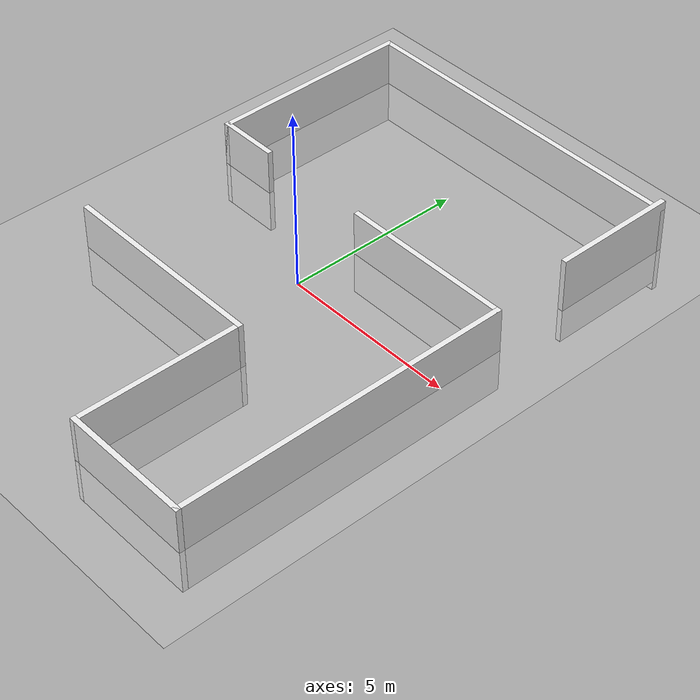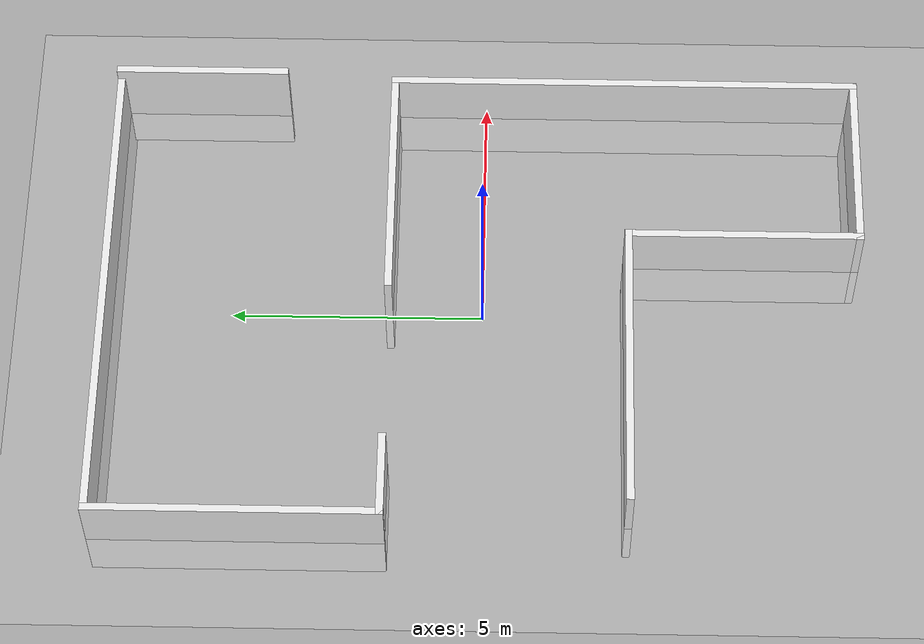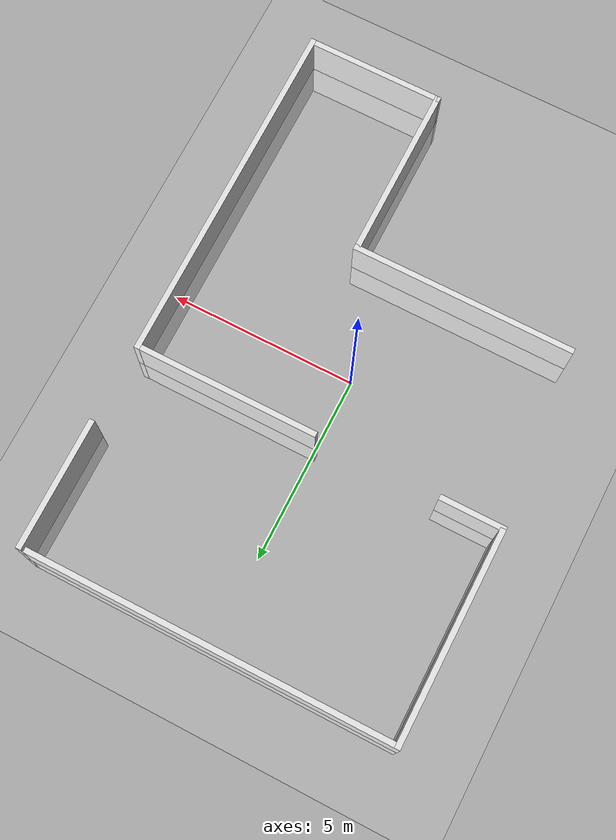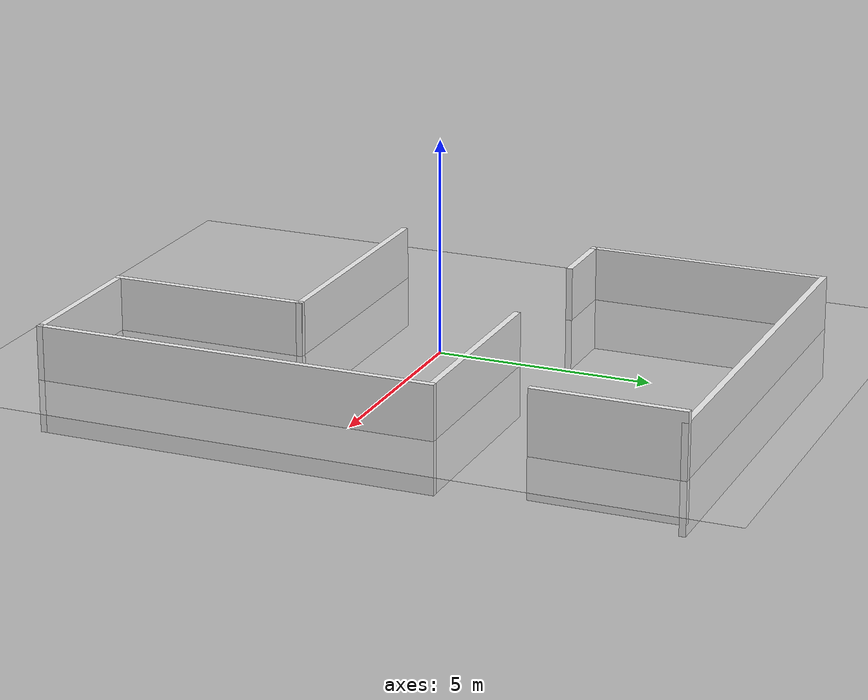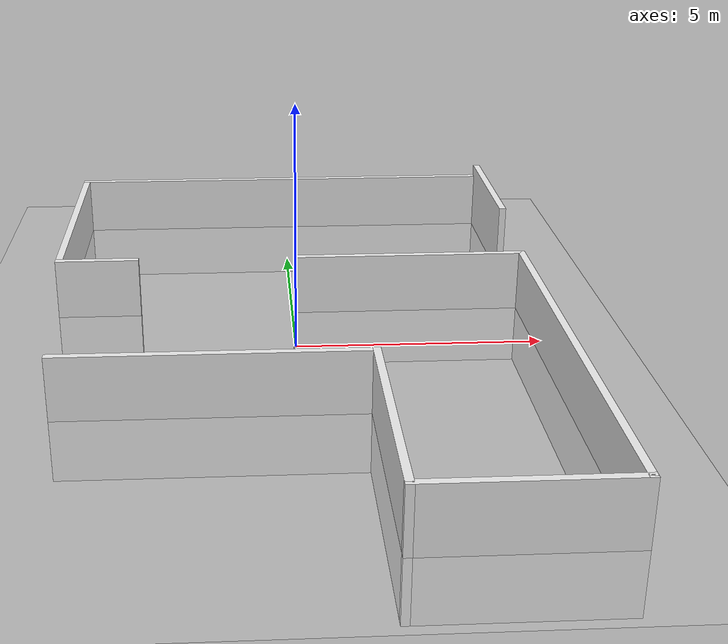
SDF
<sdf version='1.4'>
  <world name='default'>
    <!-- A global light source -->
    <include>
      <uri>model://sun</uri>
    </include>

    <!-- A ground plane -->
    <include>
      <uri>model://ground_plane</uri>
    </include>

    <physics type="ode">
      <real_time_update_rate>1000.0</real_time_update_rate>
      <max_step_size>0.001</max_step_size>
      <real_time_factor>1</real_time_factor>
      <ode>
        <solver>
          <type>quick</type>
          <iters>150</iters>
          <precon_iters>0</precon_iters>
          <sor>1.400000</sor>
          <use_dynamic_moi_rescaling>1</use_dynamic_moi_rescaling>
        </solver>
        <constraints>
          <cfm>0.00001</cfm>
          <erp>0.2</erp>
          <contact_max_correcting_vel>2000.000000</contact_max_correcting_vel>
          <contact_surface_layer>0.01000</contact_surface_layer>
        </constraints>
      </ode>
    </physics>

    <!-- Load world -->
    <include>
      <uri>model://maze</uri>
    </include>

    <scene>
      <ambient>0.4 0.4 0.4 1</ambient>
      <background>0.7 0.7 0.7 1</background>
      <shadows>true</shadows>
    </scene>

    <gui fullscreen='0'>
      <camera name='user_camera'>
        <pose>0.8 0.0 12.0 0 1.5708 0</pose>
        <view_controller>orbit</view_controller>
      </camera>
    </gui>
  </world>
</sdf>

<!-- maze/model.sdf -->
<sdf version='1.6'>
  <model name='ros_symbol_mosysmz'>
    <link name='symbol'>
      <self_collide>0</self_collide>
      <enable_wind>0</enable_wind>
      <kinematic>0</kinematic>
      <pose frame=''>0 0 0 0 -0 0</pose>
      <gravity>1</gravity>
      <inertial>
        <mass>1</mass>
        <pose frame=''>0 0 0 0 -0 0</pose>
        <inertia>
          <ixx>1</ixx>
          <ixy>0</ixy>
          <ixz>0</ixz>
          <iyy>1</iyy>
          <iyz>0</iyz>
          <izz>1</izz>
        </inertia>
      </inertial>
      <visual name='one_one'>
        <pose frame=''>0 7.475 0 0 -0 0</pose>
        <geometry>
          <box>
            <size>10 0.15 2.5</size>
          </box>
        </geometry>
        <material>
          <script>
            <uri>file://media/materials/scripts/gazebo.material</uri>
            <name>Gazebo/White</name>
          </script>
          <shader type='vertex'>
            <normal_map>__default__</normal_map>
          </shader>
          <ambient>1 1 1 1</ambient>
          <diffuse>1 1 1 1</diffuse>
          <specular>0 0 0 1</specular>
          <emissive>0 0 0 1</emissive>
        </material>
        <transparency>0</transparency>
        <cast_shadows>1</cast_shadows>
      </visual>
      <visual name='one_two'>
        <pose frame=''>-4.92506 4.675 0 0 0 -1.5708</pose>
        <geometry>
          <box>
            <size>5.75 0.15 2.5</size>
          </box>
        </geometry>
        <material>
          <script>
            <uri>file://media/materials/scripts/gazebo.material</uri>
            <name>Gazebo/White</name>
          </script>
          <shader type='vertex'>
            <normal_map>__default__</normal_map>
          </shader>
          <ambient>1 1 1 1</ambient>
          <diffuse>1 1 1 1</diffuse>
          <specular>0 0 0 1</specular>
          <emissive>0 0 0 1</emissive>
        </material>
        <transparency>0</transparency>
        <cast_shadows>1</cast_shadows>
      </visual>
      <visual name='two_one'>
        <pose frame=''>1.32494 -5.175 0 0 -0 1.5708</pose>
        <geometry>
          <box>
            <size>4.75 0.15 2.5</size>
          </box>
        </geometry>
        <material>
          <script>
            <uri>file://media/materials/scripts/gazebo.material</uri>
            <name>Gazebo/White</name>
          </script>
          <shader type='vertex'>
            <normal_map>__default__</normal_map>
          </shader>
          <ambient>1 1 1 1</ambient>
          <diffuse>1 1 1 1</diffuse>
          <specular>0 0 0 1</specular>
          <emissive>0 0 0 1</emissive>
        </material>
        <transparency>0</transparency>
        <cast_shadows>1</cast_shadows>
      </visual>
      <visual name='one_three'>
        <pose frame=''>3.12494 -7.475 0 0 -0 3.14159</pose>
        <geometry>
          <box>
            <size>3.75 0.15 2.5</size>
          </box>
        </geometry>
        <material>
          <script>
            <uri>file://media/materials/scripts/gazebo.material</uri>
            <name>Gazebo/White</name>
          </script>
          <shader type='vertex'>
            <normal_map>__default__</normal_map>
          </shader>
          <ambient>1 1 1 1</ambient>
          <diffuse>1 1 1 1</diffuse>
          <specular>0 0 0 1</specular>
          <emissive>0 0 0 1</emissive>
        </material>
        <transparency>0</transparency>
        <cast_shadows>1</cast_shadows>
      </visual>
      <visual name='two_two'>
        <pose frame=''>-1.6 -2.875 0 0 -0 0</pose>
        <geometry>
          <box>
            <size>6 0.15 2.5</size>
          </box>
        </geometry>
        <material>
          <script>
            <uri>file://media/materials/scripts/gazebo.material</uri>
            <name>Gazebo/White</name>
          </script>
          <shader type='vertex'>
            <normal_map>__default__</normal_map>
          </shader>
          <ambient>1 1 1 1</ambient>
          <diffuse>1 1 1 1</diffuse>
          <specular>0 0 0 1</specular>
          <emissive>0 0 0 1</emissive>
        </material>
        <transparency>0</transparency>
        <cast_shadows>1</cast_shadows>
      </visual>
      <visual name='two_three'>
        <pose frame=''>-4.12506 1.875 0 0 -0 0</pose>
        <geometry>
          <box>
            <size>1.75 0.15 2.5</size>
          </box>
        </geometry>
        <material>
          <script>
            <uri>file://media/materials/scripts/gazebo.material</uri>
            <name>Gazebo/White</name>
          </script>
          <shader type='vertex'>
            <normal_map>__default__</normal_map>
          </shader>
          <ambient>1 1 1 1</ambient>
          <diffuse>1 1 1 1</diffuse>
          <specular>0 0 0 1</specular>
          <emissive>0 0 0 1</emissive>
        </material>
        <transparency>0</transparency>
        <cast_shadows>1</cast_shadows>
      </visual>
      <visual name='three_one'>
        <pose frame=''>4.92494 5.8 0.25 0 0 -1.5708</pose>
        <geometry>
          <box>
            <size>3.5 0.15 2.5</size>
          </box>
        </geometry>
        <material>
          <script>
            <uri>file://media/materials/scripts/gazebo.material</uri>
            <name>Gazebo/White</name>
          </script>
          <shader type='vertex'>
            <normal_map>__default__</normal_map>
          </shader>
          <ambient>1 1 1 1</ambient>
          <diffuse>1 1 1 1</diffuse>
          <specular>0 0 0 1</specular>
          <emissive>0 0 0 1</emissive>
        </material>
        <transparency>0</transparency>
        <cast_shadows>1</cast_shadows>
      </visual>
      <visual name='three_two'>
        <pose frame=''>2.51367 1.87139 0 0 -0 0</pose>
        <geometry>
          <box>
            <size>4.97255 0.15 2.5</size>
          </box>
        </geometry>
        <material>
          <script>
            <uri>file://media/materials/scripts/gazebo.material</uri>
            <name>Gazebo/White</name>
          </script>
          <shader type='vertex'>
            <normal_map>__default__</normal_map>
          </shader>
          <ambient>1 1 1 1</ambient>
          <diffuse>1 1 1 1</diffuse>
          <specular>0 0 0 1</specular>
          <emissive>0 0 0 1</emissive>
        </material>
        <transparency>0</transparency>
        <cast_shadows>1</cast_shadows>
      </visual>
      <visual name='three_three'>
        <pose frame=''>4.92494 -2.8 0 0 0 -1.5708</pose>
        <geometry>
          <box>
            <size>9.5 0.15 2.5</size>
          </box>
        </geometry>
        <material>
          <script>
            <uri>file://media/materials/scripts/gazebo.material</uri>
            <name>Gazebo/White</name>
          </script>
          <shader type='vertex'>
            <normal_map>__default__</normal_map>
          </shader>
          <ambient>1 1 1 1</ambient>
          <diffuse>1 1 1 1</diffuse>
          <specular>0 0 0 1</specular>
          <emissive>0 0 0 1</emissive>
        </material>
        <transparency>0</transparency>
        <cast_shadows>1</cast_shadows>
      </visual>
      <collision name='one_one'>
        <laser_retro>0</laser_retro>
        <max_contacts>10</max_contacts>
        <pose frame=''>0 7.475 1.25 0 -0 0</pose>
        <geometry>
          <box>
            <size>10 0.15 2.5</size>
          </box>
        </geometry>
        <surface>
          <friction>
            <ode>
              <mu>1</mu>
              <mu2>1</mu2>
              <fdir1>0 0 0</fdir1>
              <slip1>0</slip1>
              <slip2>0</slip2>
            </ode>
            <torsional>
              <coefficient>1</coefficient>
              <patch_radius>0</patch_radius>
              <surface_radius>0</surface_radius>
              <use_patch_radius>1</use_patch_radius>
              <ode>
                <slip>0</slip>
              </ode>
            </torsional>
          </friction>
          <bounce>
            <restitution_coefficient>0</restitution_coefficient>
            <threshold>1e+06</threshold>
          </bounce>
          <contact>
            <collide_without_contact>0</collide_without_contact>
            <collide_without_contact_bitmask>1</collide_without_contact_bitmask>
            <collide_bitmask>1</collide_bitmask>
            <ode>
              <soft_cfm>0</soft_cfm>
              <soft_erp>0.2</soft_erp>
              <kp>1e+13</kp>
              <kd>1</kd>
              <max_vel>0.01</max_vel>
              <min_depth>0</min_depth>
            </ode>
            <bullet>
              <split_impulse>1</split_impulse>
              <split_impulse_penetration_threshold>-0.01</split_impulse_penetration_threshold>
              <soft_cfm>0</soft_cfm>
              <soft_erp>0.2</soft_erp>
              <kp>1e+13</kp>
              <kd>1</kd>
            </bullet>
          </contact>
        </surface>
      </collision>
      <collision name='one_two'>
        <laser_retro>0</laser_retro>
        <max_contacts>10</max_contacts>
        <pose frame=''>-4.92506 4.675 0 0 0 -1.5708</pose>
        <geometry>
          <box>
            <size>5.75 0.15 2.5</size>
          </box>
        </geometry>
        <surface>
          <friction>
            <ode>
              <mu>1</mu>
              <mu2>1</mu2>
              <fdir1>0 0 0</fdir1>
              <slip1>0</slip1>
              <slip2>0</slip2>
            </ode>
            <torsional>
              <coefficient>1</coefficient>
              <patch_radius>0</patch_radius>
              <surface_radius>0</surface_radius>
              <use_patch_radius>1</use_patch_radius>
              <ode>
                <slip>0</slip>
              </ode>
            </torsional>
          </friction>
          <bounce>
            <restitution_coefficient>0</restitution_coefficient>
            <threshold>1e+06</threshold>
          </bounce>
          <contact>
            <collide_without_contact>0</collide_without_contact>
            <collide_without_contact_bitmask>1</collide_without_contact_bitmask>
            <collide_bitmask>1</collide_bitmask>
            <ode>
              <soft_cfm>0</soft_cfm>
              <soft_erp>0.2</soft_erp>
              <kp>1e+13</kp>
              <kd>1</kd>
              <max_vel>0.01</max_vel>
              <min_depth>0</min_depth>
            </ode>
            <bullet>
              <split_impulse>1</split_impulse>
              <split_impulse_penetration_threshold>-0.01</split_impulse_penetration_threshold>
              <soft_cfm>0</soft_cfm>
              <soft_erp>0.2</soft_erp>
              <kp>1e+13</kp>
              <kd>1</kd>
            </bullet>
          </contact>
        </surface>
      </collision>
      <collision name='two_two'>
        <laser_retro>0</laser_retro>
        <max_contacts>10</max_contacts>
        <pose frame=''>-1.6 -2.875 0 0 -0 3.14159</pose>
        <geometry>
          <box>
            <size>6 0.15 2.5</size>
          </box>
        </geometry>
        <surface>
          <friction>
            <ode>
              <mu>1</mu>
              <mu2>1</mu2>
              <fdir1>0 0 0</fdir1>
              <slip1>0</slip1>
              <slip2>0</slip2>
            </ode>
            <torsional>
              <coefficient>1</coefficient>
              <patch_radius>0</patch_radius>
              <surface_radius>0</surface_radius>
              <use_patch_radius>1</use_patch_radius>
              <ode>
                <slip>0</slip>
              </ode>
            </torsional>
          </friction>
          <bounce>
            <restitution_coefficient>0</restitution_coefficient>
            <threshold>1e+06</threshold>
          </bounce>
          <contact>
            <collide_without_contact>0</collide_without_contact>
            <collide_without_contact_bitmask>1</collide_without_contact_bitmask>
            <collide_bitmask>1</collide_bitmask>
            <ode>
              <soft_cfm>0</soft_cfm>
              <soft_erp>0.2</soft_erp>
              <kp>1e+13</kp>
              <kd>1</kd>
              <max_vel>0.01</max_vel>
              <min_depth>0</min_depth>
            </ode>
            <bullet>
              <split_impulse>1</split_impulse>
              <split_impulse_penetration_threshold>-0.01</split_impulse_penetration_threshold>
              <soft_cfm>0</soft_cfm>
              <soft_erp>0.2</soft_erp>
              <kp>1e+13</kp>
              <kd>1</kd>
            </bullet>
          </contact>
        </surface>
      </collision>
      <collision name='two_one'>
        <laser_retro>0</laser_retro>
        <max_contacts>10</max_contacts>
        <pose frame=''>1.32494 -5.175 0 0 -0 1.5708</pose>
        <geometry>
          <box>
            <size>4.75 0.15 2.5</size>
          </box>
        </geometry>
        <surface>
          <friction>
            <ode>
              <mu>1</mu>
              <mu2>1</mu2>
              <fdir1>0 0 0</fdir1>
              <slip1>0</slip1>
              <slip2>0</slip2>
            </ode>
            <torsional>
              <coefficient>1</coefficient>
              <patch_radius>0</patch_radius>
              <surface_radius>0</surface_radius>
              <use_patch_radius>1</use_patch_radius>
              <ode>
                <slip>0</slip>
              </ode>
            </torsional>
          </friction>
          <bounce>
            <restitution_coefficient>0</restitution_coefficient>
            <threshold>1e+06</threshold>
          </bounce>
          <contact>
            <collide_without_contact>0</collide_without_contact>
            <collide_without_contact_bitmask>1</collide_without_contact_bitmask>
            <collide_bitmask>1</collide_bitmask>
            <ode>
              <soft_cfm>0</soft_cfm>
              <soft_erp>0.2</soft_erp>
              <kp>1e+13</kp>
              <kd>1</kd>
              <max_vel>0.01</max_vel>
              <min_depth>0</min_depth>
            </ode>
            <bullet>
              <split_impulse>1</split_impulse>
              <split_impulse_penetration_threshold>-0.01</split_impulse_penetration_threshold>
              <soft_cfm>0</soft_cfm>
              <soft_erp>0.2</soft_erp>
              <kp>1e+13</kp>
              <kd>1</kd>
            </bullet>
          </contact>
        </surface>
      </collision>
      <collision name='one_three'>
        <laser_retro>0</laser_retro>
        <max_contacts>10</max_contacts>
        <pose frame=''>3.12494 -7.475 0 0 -0 0</pose>
        <geometry>
          <box>
            <size>3.75 0.15 2.5</size>
          </box>
        </geometry>
        <surface>
          <friction>
            <ode>
              <mu>1</mu>
              <mu2>1</mu2>
              <fdir1>0 0 0</fdir1>
              <slip1>0</slip1>
              <slip2>0</slip2>
            </ode>
            <torsional>
              <coefficient>1</coefficient>
              <patch_radius>0</patch_radius>
              <surface_radius>0</surface_radius>
              <use_patch_radius>1</use_patch_radius>
              <ode>
                <slip>0</slip>
              </ode>
            </torsional>
          </friction>
          <bounce>
            <restitution_coefficient>0</restitution_coefficient>
            <threshold>1e+06</threshold>
          </bounce>
          <contact>
            <collide_without_contact>0</collide_without_contact>
            <collide_without_contact_bitmask>1</collide_without_contact_bitmask>
            <collide_bitmask>1</collide_bitmask>
            <ode>
              <soft_cfm>0</soft_cfm>
              <soft_erp>0.2</soft_erp>
              <kp>1e+13</kp>
              <kd>1</kd>
              <max_vel>0.01</max_vel>
              <min_depth>0</min_depth>
            </ode>
            <bullet>
              <split_impulse>1</split_impulse>
              <split_impulse_penetration_threshold>-0.01</split_impulse_penetration_threshold>
              <soft_cfm>0</soft_cfm>
              <soft_erp>0.2</soft_erp>
              <kp>1e+13</kp>
              <kd>1</kd>
            </bullet>
          </contact>
        </surface>
      </collision>
      <collision name='two_three'>
        <laser_retro>0</laser_retro>
        <max_contacts>10</max_contacts>
        <pose frame=''>-4.12506 1.875 0 0 -0 0</pose>
        <geometry>
          <box>
            <size>1.75 0.15 2.5</size>
          </box>
        </geometry>
        <surface>
          <friction>
            <ode>
              <mu>1</mu>
              <mu2>1</mu2>
              <fdir1>0 0 0</fdir1>
              <slip1>0</slip1>
              <slip2>0</slip2>
            </ode>
            <torsional>
              <coefficient>1</coefficient>
              <patch_radius>0</patch_radius>
              <surface_radius>0</surface_radius>
              <use_patch_radius>1</use_patch_radius>
              <ode>
                <slip>0</slip>
              </ode>
            </torsional>
          </friction>
          <bounce>
            <restitution_coefficient>0</restitution_coefficient>
            <threshold>1e+06</threshold>
          </bounce>
          <contact>
            <collide_without_contact>0</collide_without_contact>
            <collide_without_contact_bitmask>1</collide_without_contact_bitmask>
            <collide_bitmask>1</collide_bitmask>
            <ode>
              <soft_cfm>0</soft_cfm>
              <soft_erp>0.2</soft_erp>
              <kp>1e+13</kp>
              <kd>1</kd>
              <max_vel>0.01</max_vel>
              <min_depth>0</min_depth>
            </ode>
            <bullet>
              <split_impulse>1</split_impulse>
              <split_impulse_penetration_threshold>-0.01</split_impulse_penetration_threshold>
              <soft_cfm>0</soft_cfm>
              <soft_erp>0.2</soft_erp>
              <kp>1e+13</kp>
              <kd>1</kd>
            </bullet>
          </contact>
        </surface>
      </collision>
      <collision name='three_one'>
        <laser_retro>0</laser_retro>
        <max_contacts>10</max_contacts>
        <pose frame=''>4.92494 5.8 0 0 0 -1.5708</pose>
        <geometry>
          <box>
            <size>3.5 0.15 2.5</size>
          </box>
        </geometry>
        <surface>
          <friction>
            <ode>
              <mu>1</mu>
              <mu2>1</mu2>
              <fdir1>0 0 0</fdir1>
              <slip1>0</slip1>
              <slip2>0</slip2>
            </ode>
            <torsional>
              <coefficient>1</coefficient>
              <patch_radius>0</patch_radius>
              <surface_radius>0</surface_radius>
              <use_patch_radius>1</use_patch_radius>
              <ode>
                <slip>0</slip>
              </ode>
            </torsional>
          </friction>
          <bounce>
            <restitution_coefficient>0</restitution_coefficient>
            <threshold>1e+06</threshold>
          </bounce>
          <contact>
            <collide_without_contact>0</collide_without_contact>
            <collide_without_contact_bitmask>1</collide_without_contact_bitmask>
            <collide_bitmask>1</collide_bitmask>
            <ode>
              <soft_cfm>0</soft_cfm>
              <soft_erp>0.2</soft_erp>
              <kp>1e+13</kp>
              <kd>1</kd>
              <max_vel>0.01</max_vel>
              <min_depth>0</min_depth>
            </ode>
            <bullet>
              <split_impulse>1</split_impulse>
              <split_impulse_penetration_threshold>-0.01</split_impulse_penetration_threshold>
              <soft_cfm>0</soft_cfm>
              <soft_erp>0.2</soft_erp>
              <kp>1e+13</kp>
              <kd>1</kd>
            </bullet>
          </contact>
        </surface>
      </collision>
      <collision name='three_two'>
        <laser_retro>0</laser_retro>
        <max_contacts>10</max_contacts>
        <pose frame=''>2.51367 1.87139 0 0 -0 0</pose>
        <geometry>
          <box>
            <size>4.97255 0.15 2.5</size>
          </box>
        </geometry>
        <surface>
          <friction>
            <ode>
              <mu>1</mu>
              <mu2>1</mu2>
              <fdir1>0 0 0</fdir1>
              <slip1>0</slip1>
              <slip2>0</slip2>
            </ode>
            <torsional>
              <coefficient>1</coefficient>
              <patch_radius>0</patch_radius>
              <surface_radius>0</surface_radius>
              <use_patch_radius>1</use_patch_radius>
              <ode>
                <slip>0</slip>
              </ode>
            </torsional>
          </friction>
          <bounce>
            <restitution_coefficient>0</restitution_coefficient>
            <threshold>1e+06</threshold>
          </bounce>
          <contact>
            <collide_without_contact>0</collide_without_contact>
            <collide_without_contact_bitmask>1</collide_without_contact_bitmask>
            <collide_bitmask>1</collide_bitmask>
            <ode>
              <soft_cfm>0</soft_cfm>
              <soft_erp>0.2</soft_erp>
              <kp>1e+13</kp>
              <kd>1</kd>
              <max_vel>0.01</max_vel>
              <min_depth>0</min_depth>
            </ode>
            <bullet>
              <split_impulse>1</split_impulse>
              <split_impulse_penetration_threshold>-0.01</split_impulse_penetration_threshold>
              <soft_cfm>0</soft_cfm>
              <soft_erp>0.2</soft_erp>
              <kp>1e+13</kp>
              <kd>1</kd>
            </bullet>
          </contact>
        </surface>
      </collision>
      <collision name='three_three'>
        <laser_retro>0</laser_retro>
        <max_contacts>10</max_contacts>
        <pose frame=''>4.92494 -2.8 0 0 0 -1.5708</pose>
        <geometry>
          <box>
            <size>9.5 0.15 2.5</size>
          </box>
        </geometry>
        <surface>
          <friction>
            <ode>
              <mu>1</mu>
              <mu2>1</mu2>
              <fdir1>0 0 0</fdir1>
              <slip1>0</slip1>
              <slip2>0</slip2>
            </ode>
            <torsional>
              <coefficient>1</coefficient>
              <patch_radius>0</patch_radius>
              <surface_radius>0</surface_radius>
              <use_patch_radius>1</use_patch_radius>
              <ode>
                <slip>0</slip>
              </ode>
            </torsional>
          </friction>
          <bounce>
            <restitution_coefficient>0</restitution_coefficient>
            <threshold>1e+06</threshold>
          </bounce>
          <contact>
            <collide_without_contact>0</collide_without_contact>
            <collide_without_contact_bitmask>1</collide_without_contact_bitmask>
            <collide_bitmask>1</collide_bitmask>
            <ode>
              <soft_cfm>0</soft_cfm>
              <soft_erp>0.2</soft_erp>
              <kp>1e+13</kp>
              <kd>1</kd>
              <max_vel>0.01</max_vel>
              <min_depth>0</min_depth>
            </ode>
            <bullet>
              <split_impulse>1</split_impulse>
              <split_impulse_penetration_threshold>-0.01</split_impulse_penetration_threshold>
              <soft_cfm>0</soft_cfm>
              <soft_erp>0.2</soft_erp>
              <kp>1e+13</kp>
              <kd>1</kd>
            </bullet>
          </contact>
        </surface>
      </collision>
    </link>
    <static>1</static>
    <allow_auto_disable>1</allow_auto_disable>
  </model>
</sdf>
